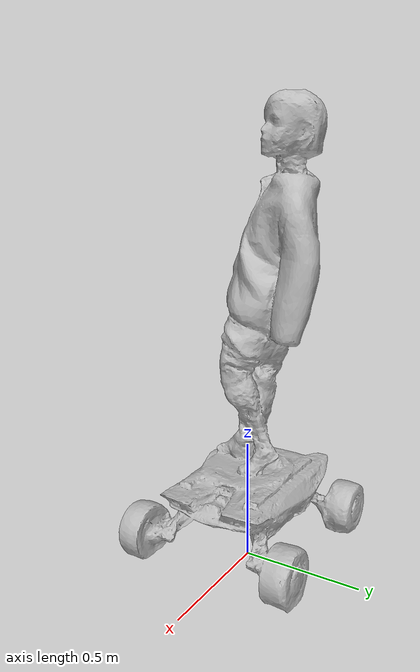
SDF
<?xml version="1.0" ?>
<sdf version="1.5">
  <model name="human_robot">
  <pose>0 0 0 0 0 0</pose>

  <!-- ignition plugin -->

    <plugin
      filename="libignition-gazebo-diff-drive-system.so"
      name="ignition::gazebo::systems::DiffDrive">
      <left_joint>left_frontwheel_joint</left_joint>
      <left_joint>left_backwheel_joint</left_joint>
      <right_joint>right_frontwheel_joint</right_joint>
      <right_joint>right_backwheel_joint</right_joint>
      <wheel_separation>0.580</wheel_separation>
      <wheel_radius>0.080</wheel_radius>
      <odom_publish_frequency>30</odom_publish_frequency>
      <topic>/cmd_vel_obstacle</topic>
      <odom_topic>odom_obstacle</odom_topic>
    </plugin>

    <plugin
      filename="PathPublisher"
      name="ignition::gazebo::PathPublisher">
      <first_file_name>dynamic_obstacle_left1</first_file_name>
      <second_file_name>dynamic_obstacle_right1</second_file_name>
    </plugin>
    <plugin
      filename="FollowPath"
      name="ignition::gazebo::FollowPath">
      <robot_name>human_robot</robot_name>
      <threshold>2.0</threshold>
      <linear_vel>1.39</linear_vel>
      <p_gain>1.0</p_gain>
      <i_gain>0.0</i_gain>
      <d_gain>0.14</d_gain>
    </plugin>

    <!-- chassis -->

    <link name='body'>
      <pose relative_to='__model__'>0 0 0.15 0 0 0</pose>

      <inertial> <!--inertial properties of the link mass, inertia matix-->
        <inertia>
          <ixx>4.56667</ixx>
          <ixy>0</ixy>
          <ixz>0</ixz>
          <iyy>4.56667</iyy>
          <iyz>0</iyz>
          <izz>4.56667</izz>
        </inertia>
        <mass>30.0</mass>
      </inertial>

      <visual name='visual'>
        <pose>-0.0 0.0 -0.1 0 0 0</pose>
        <geometry>
          <mesh>
            <uri>package://simulator/models/dynamic_obstacle/meshes/human_robot6.dae</uri>
            <scale>0.2 0.2 0.2</scale>
          </mesh>
        </geometry>
      </visual>

      <collision name='collision'>
        <pose>0 0 0.15 0 0 3.14159</pose>
        <geometry>
          <box>
            <size>0.612 0.580 0.1</size>
          </box>
        </geometry>
        <surface>
          <contact>
            <collide_bitmask>0x0A</collide_bitmask>
          </contact>
        </surface>
      </collision>
    </link>

    <!-- left wheel -->

    <link name='left_frontwheel'>
      <pose relative_to="body">0.306 0.306 0 1.57 0 0</pose>
      <inertial>
        <mass>1.0</mass>
        <inertia>
          <ixx>0.04778</ixx>
          <ixy>0</ixy>
          <ixz>0</ixz>
          <iyy>0.04778</iyy>
          <iyz>0</iyz>
          <izz>0.07875</izz>
        </inertia>
      </inertial>
      <collision name='collision'>
        <pose>0 0 0 0 0 0</pose>
	      <geometry>
          <cylinder>
            <radius>0.080</radius>
	          <length>0.08</length>
          </cylinder>
        </geometry>
        <surface>
          <contact>
            <collide_bitmask>0x0A</collide_bitmask>
          </contact>
        </surface>
      </collision>
    </link>

    <!-- right wheel -->

    <link name='right_frontwheel'>
      <pose relative_to="body">0.306 -0.306 0 1.57 0 0</pose> <!--angles are in radian-->
      <inertial>
        <mass>1.0</mass>
        <inertia>
          <ixx>0.04778</ixx>
          <ixy>0</ixy>
          <ixz>0</ixz>
          <iyy>0.04778</iyy>
          <iyz>0</iyz>
          <izz>0.07875</izz>
        </inertia>
      </inertial>
      <collision name='collision'>
	    <pose>0 0.0 0 0 0 0</pose>
        <geometry>
          <cylinder>
            <radius>0.080</radius>
            <length>0.08</length>
          </cylinder>
        </geometry>
        <surface>
          <contact>
            <collide_bitmask>0x0A</collide_bitmask>
          </contact>
        </surface>
      </collision>
    </link>

    <!-- caster wheel -->

    <frame name="caster_frame" attached_to='body'>
        <pose>-0.306 0 0 0 0 0</pose>
    </frame>

    <link name='right_backwheel'>
      <pose relative_to='caster_frame'>0 -0.306 0 1.57 0 0</pose>
      <inertial>
        <mass>1.0</mass>
        <inertia>
          <ixx>0.001</ixx>
          <ixy>0</ixy>
          <ixz>0</ixz>
          <iyy>0.001</iyy>
          <iyz>0</iyz>
          <izz>0.001</izz>
        </inertia>
      </inertial>
      <collision name='collision'>
        <geometry>
          <cylinder>
            <radius>0.080</radius>
            <length>0.08</length>
          </cylinder>
        </geometry>
        <surface>
          <contact>
            <collide_bitmask>0x0A</collide_bitmask>
          </contact>
        </surface>
      </collision>
    </link>

    <link name='left_backwheel'>
      <pose relative_to='caster_frame'>0 0.306 0 1.57 0 0</pose>
      <inertial>
        <mass>1.0</mass>
        <inertia>
          <ixx>0.04778</ixx>
          <ixy>0</ixy>
          <ixz>0</ixz>
          <iyy>0.04778</iyy>
          <iyz>0</iyz>
          <izz>0.07875</izz>
        </inertia>
      </inertial>
      <collision name='collision'>
        <geometry>
          <cylinder>
            <radius>0.080</radius>
            <length>0.08</length>
          </cylinder>
        </geometry>
        <surface>
          <contact>
            <collide_bitmask>0x0A</collide_bitmask>
          </contact>
        </surface>
      </collision>
    </link>

    <!-- joint config -->

    <joint name='left_frontwheel_joint' type='revolute'>
      <pose relative_to='left_frontwheel'/>
      <parent>body</parent>
      <child>left_frontwheel</child>
      <axis>
        <xyz expressed_in='__model__'>0 1 0</xyz>
        <limit>
          <effort>84.4</effort>
        </limit>
        <dynamics>
          <friction>0.9</friction>  <!-- 静止摩擦 -->
        </dynamics>
      </axis>
    </joint>

    <joint name='right_frontwheel_joint' type='revolute'>
      <pose relative_to='right_frontwheel'/>
      <parent>body</parent>
      <child>right_frontwheel</child>
      <axis>
        <xyz expressed_in='__model__'>0 1 0</xyz>
        <limit>
          <effort>84.4</effort>
        </limit>
        <dynamics>
          <friction>0.9</friction>  <!-- 静止摩擦 -->
        </dynamics>
      </axis>
    </joint>

    <joint name='right_backwheel_joint' type='revolute'>
      <pose relative_to='right_backwheel'/>
      <parent>body</parent>
      <child>right_backwheel</child>
      <axis>
        <xyz expressed_in='__model__'>0 1 0</xyz>
        <limit>
          <effort>84.4</effort>
        </limit>
        <dynamics>
          <friction>0.9</friction>  <!-- 静止摩擦 -->
        </dynamics>
      </axis>
    </joint>

    <joint name='left_backwheel_joint' type='revolute'>
      <pose relative_to='left_backwheel'/>
      <parent>body</parent>
      <child>left_backwheel</child>
      <axis>
        <xyz expressed_in='__model__'>0 1 0</xyz>
        <limit>
          <effort>84.4</effort>
        </limit>
        <dynamics>
          <friction>0.9</friction>  <!-- 静止摩擦 -->
        </dynamics>
      </axis>
    </joint>

    <!-- sensors -->
    <link name="gps_link">
      <sensor name="gps_sensor" type="navsat">
        <always_on>true</always_on>
        <update_rate>5.0</update_rate>
        <topic>obstacle/navsat</topic>
      </sensor>
    </link>
    <link name="imu_link">
      <sensor name="imu_sensor" type="imu">
        <always_on>1</always_on>
        <update_rate>20.0</update_rate> <!--Hz-->
        <visualize>true</visualize>
        <topic>obstacle/imu</topic>
      </sensor>
    </link>

    <joint name="gps_joint" type="fixed">
      <parent>body</parent>
      <child>gps_link</child>
      <pose>0 0 0 0 0 0</pose>
      <axis>
        <xyz>0 0 1</xyz>
      </axis>
    </joint>

    <joint name="imu_joint" type="fixed">
      <parent>body</parent>
      <child>imu_link</child>
      <pose>0.0 0.0 0.0 0 0 0</pose>
      <axis>
        <xyz>0 0 1</xyz>
      </axis>
    </joint>

  </model>
</sdf>
